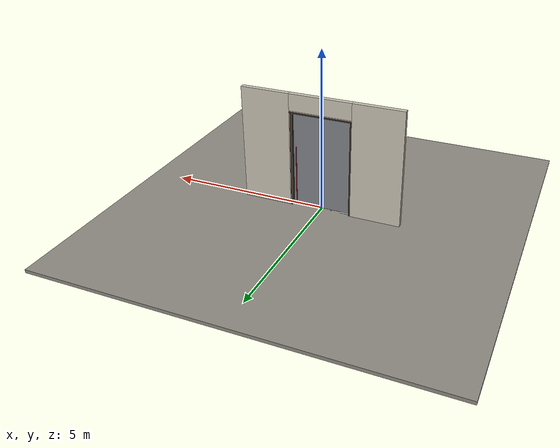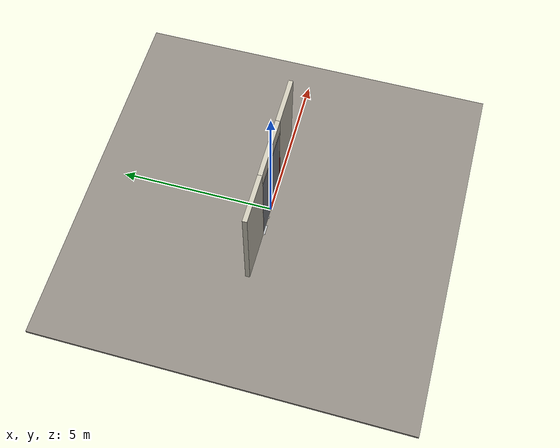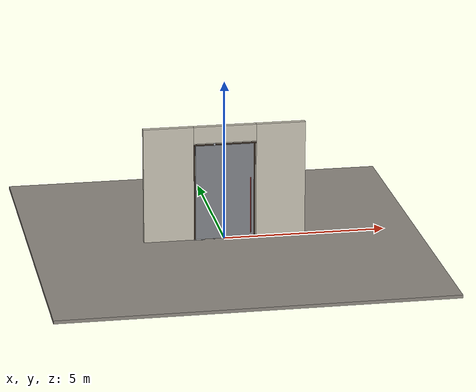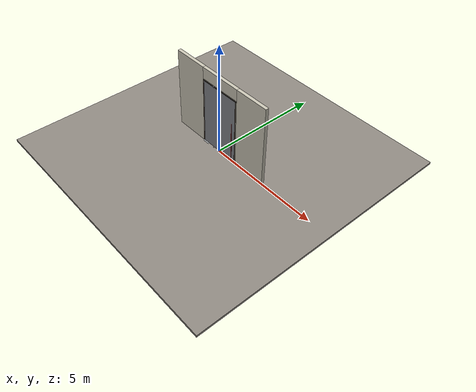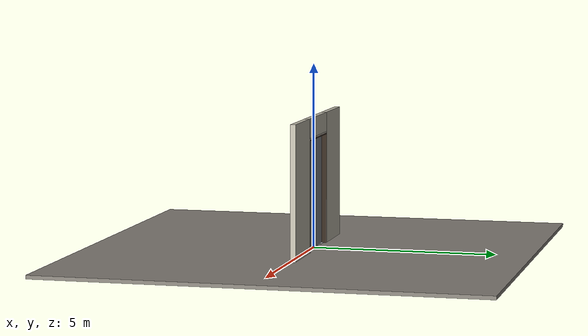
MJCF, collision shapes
<?xml version="1.0" ?>
<mujoco model="db0326_pivot_full">
  <compiler angle="radian" meshdir="../../hardware" texturedir="../../textures" autolimits="true" inertiafromgeom="false"/>
  <option timestep="0.002" integrator="implicitfast" cone="elliptic" impratio="10" noslip_iterations="3">
    <flag multiccd="enable"/>
  </option>
  <size memory="16M"/>
  <default>
    <geom condim="4" solref="0.005 1" solimp="0.95 0.99 0.001"/>
    <joint solreflimit="0.005 1" solimplimit="0.95 0.99 0.001"/>
    <tendon solreflimit="0.005 1"/>
    <equality solref="0.002 1"/>
  </default>
  <visual>
    <headlight ambient="0.4 0.4 0.4" diffuse="0.7 0.7 0.7" specular="0.2 0.2 0.2"/>
    <quality shadowsize="4096"/>
    <map znear="0.01" zfar="60"/>
  </visual>
  <asset>
    <mesh name="pull_897e207f65" file="pull_897e207f65.obj"/>
    <material name="mat_floor" rgba="0.55 0.53 0.5 1" specular="0.2" shininess="0.15" reflectance="0"/>
    <material name="mat_wall" rgba="0.78 0.76 0.7 1" specular="0.2" shininess="0.1" reflectance="0"/>
    <material name="mat_leaf" rgba="0.5 0.51 0.53 1" specular="0.23" shininess="0.49" reflectance="0.02"/>
    <material name="mat_hinge" rgba="0.65 0.66 0.68 1" specular="0.74" shininess="0.5" reflectance="0.36"/>
    <material name="mat_op_stainless" rgba="0.75 0.76 0.77 1" specular="0.8" shininess="0.65" reflectance="0.4"/>
    <material name="mat_frame" rgba="0.22 0.17 0.13 1" specular="0.8" shininess="0.6" reflectance="0.4"/>
    <material name="mat_closer" rgba="0.75 0.76 0.77 1" specular="0.8" shininess="0.65" reflectance="0.4"/>
    <texture name="skybox" type="skybox" builtin="gradient" rgb1="0.6 0.7 0.85" rgb2="0.9 0.92 0.95" width="256" height="256"/>
  </asset>
  <worldbody>
    <light name="sun" pos="1.5 -2.5 4" dir="-0.3 0.5 -0.8" directional="true" diffuse="0.8 0.8 0.8" specular="0.3 0.3 0.3" castshadow="true"/>
    <light name="fill" pos="-1.5 2.5 3" dir="0.3 -0.5 -0.7" directional="true" diffuse="0.35 0.35 0.4" castshadow="false"/>
    <camera name="robot_view" pos="0 -3.38625 2.47165" xyaxes="1 0 0 0 0.26963 0.962964" fovy="52"/>
    <camera name="far_view" pos="0 3.51125 2.47165" xyaxes="-1 0 0 0 -0.26963 0.962964" fovy="52"/>
    <camera name="iso" pos="2.62105 -2.83445 3.02345" xyaxes="0.741536 0.670913 0 -0.242917 0.268487 0.932151" fovy="46"/>
    <camera name="detail_handle" pos="0.975 -0.868 1.33" xyaxes="0.97561 0.219512 0 -0.070934 0.315262 0.94635" fovy="38"/>
    <geom name="floor" type="box" size="6 6 0.05" pos="0 0 -0.05" material="mat_floor" group="0" contype="1" conaffinity="1" friction="0.8 0.005 0.0001" density="2400"/>
    <geom name="wall_left" type="box" size="0.7745 0.0725 1.806" pos="-1.7255 0.0625 1.806" material="mat_wall" group="0" contype="1" conaffinity="1" friction="0.6 0.005 0.0001" density="800"/>
    <geom name="wall_right" type="box" size="0.7595 0.0725 1.806" pos="1.7405 0.0625 1.806" material="mat_wall" group="0" contype="1" conaffinity="1" friction="0.6 0.005 0.0001" density="800"/>
    <geom name="wall_header" type="box" size="0.966 0.0725 0.2625" pos="0.015 0.0625 3.3495" material="mat_wall" group="0" contype="1" conaffinity="1" friction="0.6 0.005 0.0001" density="800"/>
    <geom name="pivot_bottom_socket" type="box" size="0.035 0.035 0.008" pos="-0.312 0 -0.002" material="mat_hinge" group="1" contype="0" conaffinity="0" density="7850"/>
    <geom name="pivot_top_bracket" type="box" size="0.035 0.035 0.0355" pos="-0.312 0 3.0515" material="mat_hinge" group="1" contype="0" conaffinity="0" density="7850"/>
    <geom name="jamb_hinge" type="box" size="0.0225 0.0725 1.506" pos="-0.9285 0.0625 1.506" material="mat_frame" group="0" contype="1" conaffinity="1" friction="0.6 0.005 0.0001" density="300"/>
    <geom name="jamb_strike" type="box" size="0.0225 0.0725 1.506" pos="0.9285 0.0625 1.506" material="mat_frame" group="0" contype="1" conaffinity="1" friction="0.6 0.005 0.0001" density="300"/>
    <geom name="stud_strike" type="box" size="0.015 0.0725 1.506" pos="0.966 0.0625 1.506" material="mat_wall" group="0" contype="1" conaffinity="1" friction="0.6 0.005 0.0001" density="500"/>
    <geom name="jamb_head" type="box" size="0.966 0.0725 0.0225" pos="0.015 0.0625 3.0345" material="mat_frame" group="0" contype="1" conaffinity="1" friction="0.6 0.005 0.0001" density="300"/>
    <geom name="head_stud" type="box" size="0.966 0.0725 0.015" pos="0.015 0.0625 3.072" material="mat_wall" group="0" contype="1" conaffinity="1" friction="0.6 0.005 0.0001" density="500"/>
    <geom name="floor_spring_cover" type="box" size="0.17 0.06 0.002" pos="-0.786 0 0.002" material="mat_closer" group="1" contype="0" conaffinity="0" density="7900"/>
    <site name="approach_point" pos="0 -1.5 0" quat="1 0 0 0" size="0.05" rgba="0.2 0.9 0.2 0.5" group="4"/>
    <site name="goal_point" pos="0 1.5 0" quat="1 0 0 0" size="0.05" rgba="0.2 0.9 0.2 0.5" group="4"/>
    <site name="door_plane_center" pos="0 0 1.506" quat="1 0 0 0" size="0.02" rgba="0.2 0.9 0.2 0.5" group="4"/>
    <body name="leaf" pos="-0.906 0 0">
      <inertial pos="0.962293 0 1.475519" mass="262.34" quat="0.513466 -0.513466 0.486161 0.486161" diaginertia="76.46405459 191.944639743 268.24143716"/>
      <joint name="leaf_hinge" type="hinge" axis="0 0 -1" pos="0.594 0 0" limited="true" range="0 1.570796" damping="13.6876" frictionloss="4.760965" stiffness="58.187047" springref="-1.569937" armature="0.02"/>
      <geom name="leaf_slab" type="box" size="0.9 0.003 1.5" pos="0.906 0 1.508" material="mat_leaf" group="0" contype="1" conaffinity="1" friction="0.45 0.005 0.0001" density="1"/>
      <geom name="pivot_bottom" type="cylinder" size="0.014 0.004" pos="0.594 0 0.003" material="mat_hinge" group="1" contype="0" conaffinity="0" density="7850"/>
      <geom name="pivot_top" type="cylinder" size="0.014 0.004" pos="0.594 0 3.012" material="mat_hinge" group="1" contype="0" conaffinity="0" density="7850"/>
      <geom name="leaf_pull_n" type="mesh" mesh="pull_897e207f65" pos="1.701 -0.003 1.05" quat="0.707107 0.707107 0 0" material="mat_op_stainless" group="1" contype="0" conaffinity="0" density="3000"/>
      <geom name="leaf_pull_col_n" type="capsule" size="0.016 0.88" pos="1.701 -0.068 1.05" material="mat_op_stainless" group="3" contype="1" conaffinity="1" rgba="0.8 0.3 0.3 0.25" friction="0.7 0.01 0.0001" density="3000"/>
      <geom name="leaf_pull_p" type="mesh" mesh="pull_897e207f65" pos="1.701 0.003 1.05" quat="-0.707107 0.707107 0 0" material="mat_op_stainless" group="1" contype="0" conaffinity="0" density="3000"/>
      <geom name="leaf_pull_col_p" type="capsule" size="0.016 0.88" pos="1.701 0.068 1.05" material="mat_op_stainless" group="3" contype="1" conaffinity="1" rgba="0.8 0.3 0.3 0.25" friction="0.7 0.01 0.0001" density="3000"/>
      <site name="leaf_pull_grip_n" pos="1.701 -0.068 1.05" quat="1 0 0 0" size="0.012" rgba="0.2 0.9 0.2 0.5" group="4"/>
      <site name="leaf_pull_grip_p" pos="1.701 0.068 1.05" quat="1 0 0 0" size="0.012" rgba="0.2 0.9 0.2 0.5" group="4"/>
      <site name="leaf_edge_mid" pos="1.806 0 1.5" quat="1 0 0 0" size="0.02" rgba="0.2 0.9 0.2 0.5" group="4"/>
    </body>
  </worldbody>
  <sensor>
    <jointpos name="leaf_hinge_pos" joint="leaf_hinge"/>
    <jointvel name="leaf_hinge_vel" joint="leaf_hinge"/>
  </sensor>
</mujoco>
